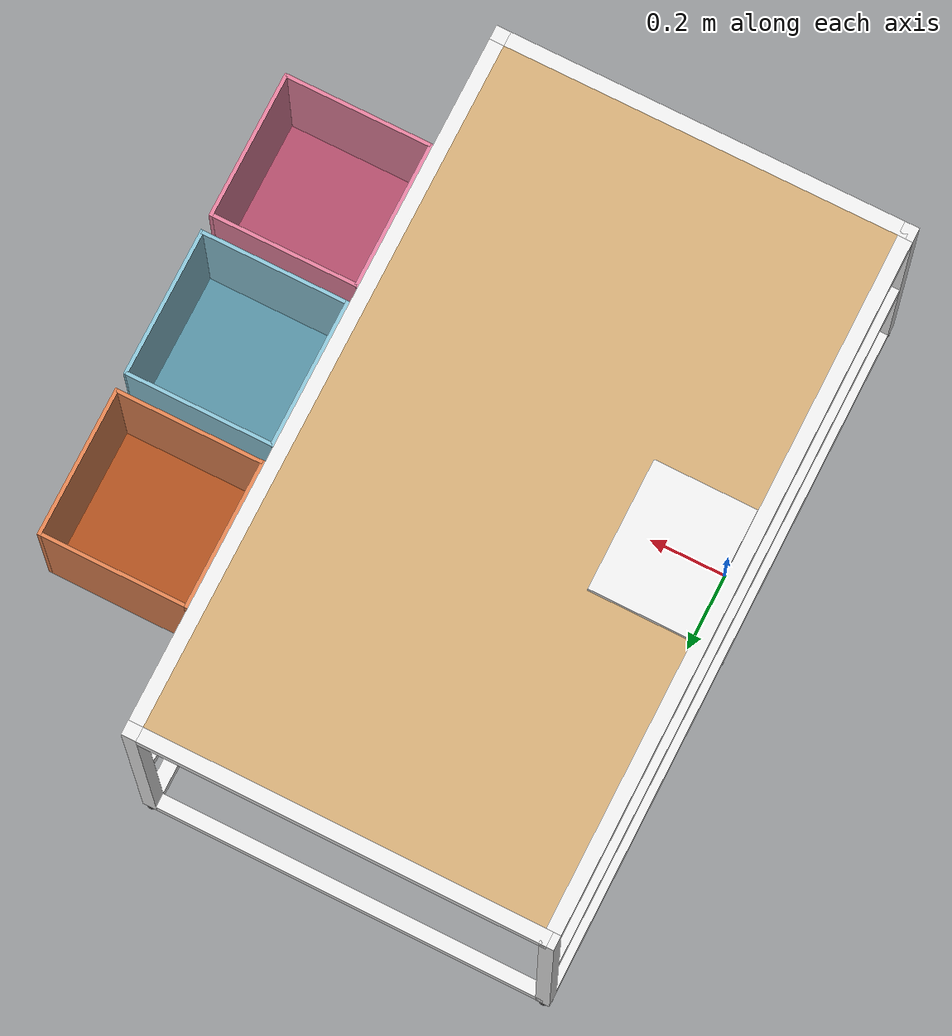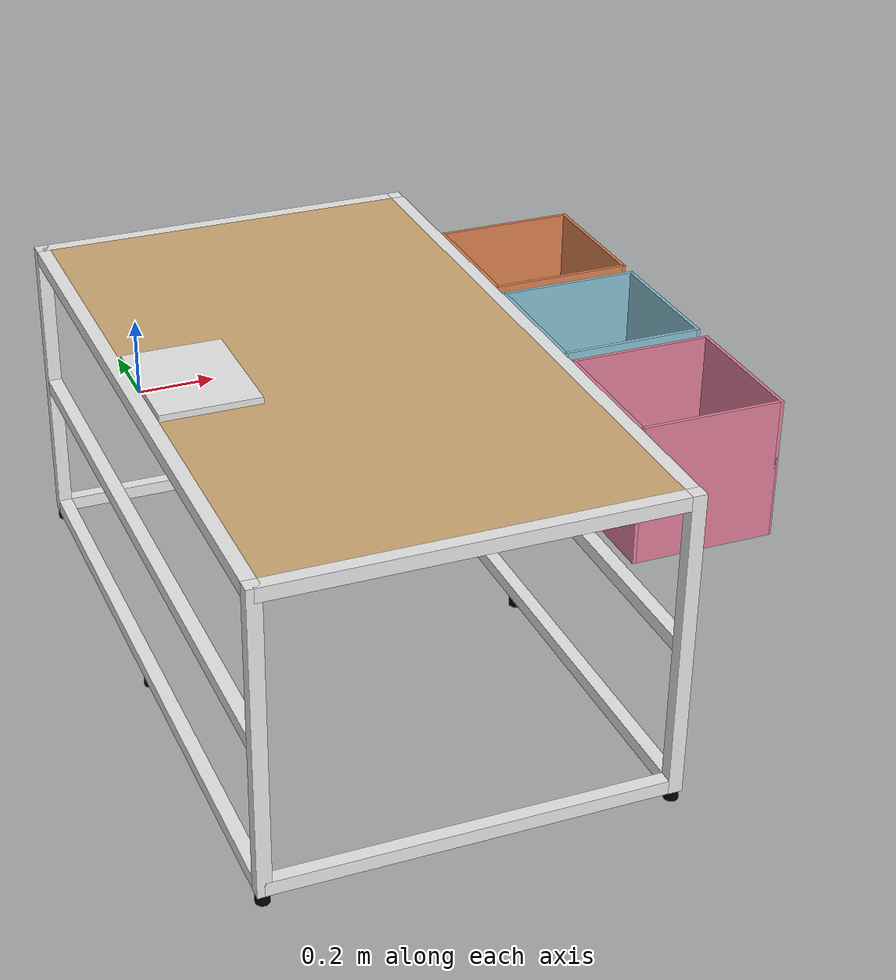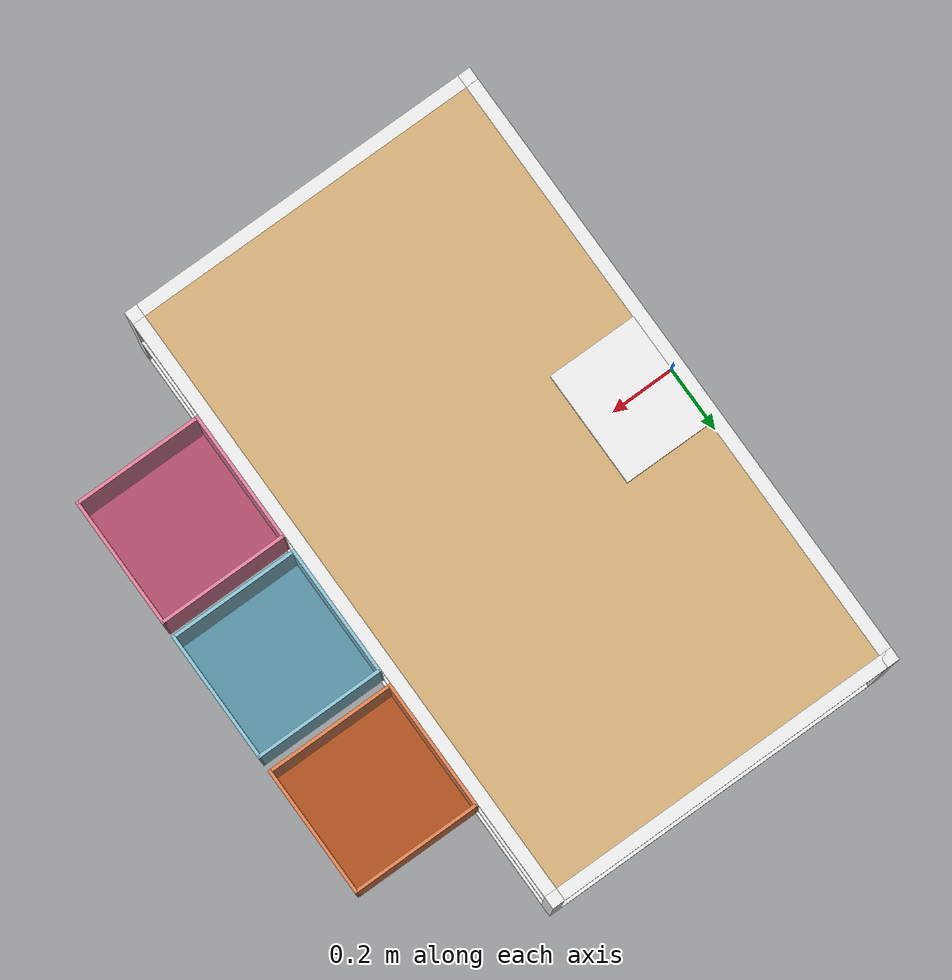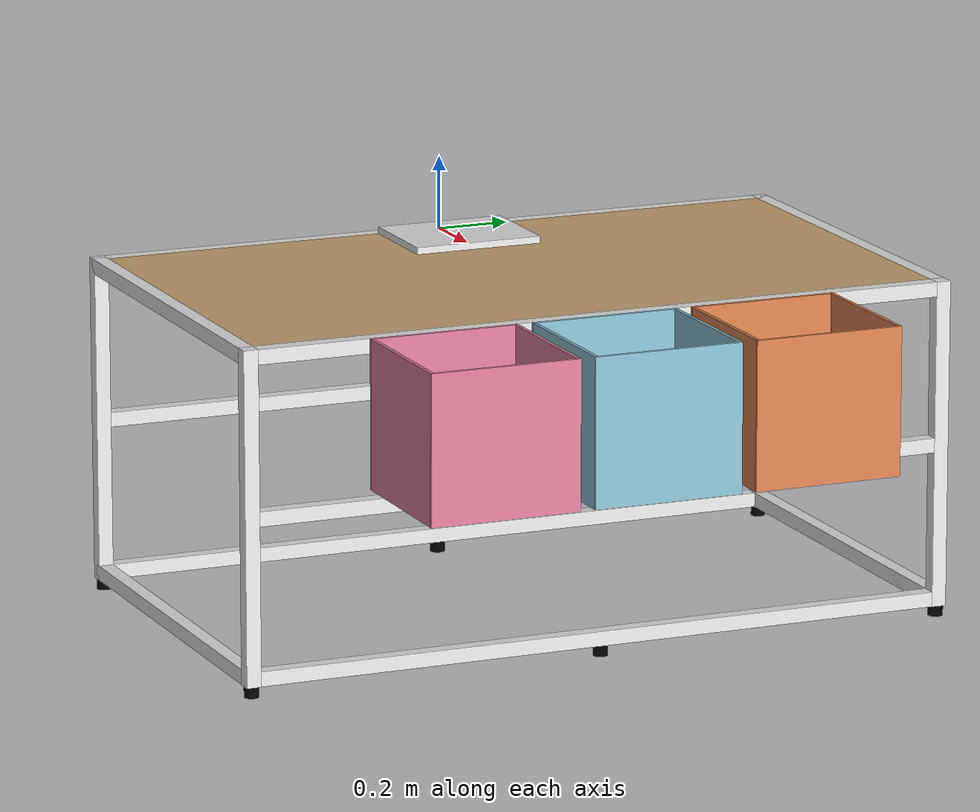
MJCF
<mujoco model="PandaFrame">
    <worldbody>
        <body name="table_plane" pos="0 0 0">
            <geom type="box" pos="0.54 0 0" size="0.54 0.96 0.001" rgba="0.8 0.655 0.45 1" solimp="0.999 0.999 0.001" solref="0.002 1"/>

            <body name="panda_ground" pos="0.14 0 0.01">
            <geom type="box" size="0.14 0.18 0.01" rgba=".9 .9 .9 1"/>
            </body>

            <body name="front_upper" pos="0.55 0 -0.019">
            <geom type="box" pos="0.55 0 0" size="0.02 0.96 0.02" rgba=".9 .9 .9 1"/>
            </body>
            <body name="front_mid" pos="0.55 0 -0.445">
            <geom type="box" pos="0.55 0 0" size="0.02 0.96 0.02" rgba=".9 .9 .9 1"/>
            </body>
            <body name="front_lower" pos="0.55 0 -0.87">
            <geom type="box" pos="0.55 0 0" size="0.02 0.96 0.02" rgba=".9 .9 .9 1"/>
            </body>

            <body name="back_upper" pos="-0.02 0 -0.019">
            <geom type="box" size="0.02 0.96 0.02" rgba=".9 .9 .9 1"/>
            </body>
            <body name="back_mid" pos="-0.02 0 -0.445">
            <geom type="box" size="0.02 0.96 0.02" rgba=".9 .9 .9 1"/>
            </body>
            <body name="back_lower" pos="-0.02 0 -0.87">
            <geom type="box" size="0.02 0.96 0.02" rgba=".9 .9 .9 1"/>
            </body>

            <body name="vert_front_left" pos="0.55 0.98 -0.445">
            <geom type="box" pos="0.55 0 0" size="0.02 0.02 0.446" rgba=".9 .9 .9 1"/>
            </body>
            <body name="vert_front_right" pos="0.55 -0.98 -0.445">
            <geom type="box" pos="0.55 0 0" size="0.02 0.02 0.446" rgba=".9 .9 .9 1"/>
            </body>
            <body name="vert_back_left" pos="-0.02 0.98 -0.445">
            <geom type="box" size="0.02 0.02 0.446" rgba=".9 .9 .9 1"/>
            </body>
            <body name="vert_back_right" pos="-0.02 -0.98 -0.445">
            <geom type="box" size="0.02 0.02 0.446" rgba=".9 .9 .9 1"/>
            </body>

            <body name="side_upper_right" pos="0 -0.98 -0.019">
            <geom type="box" pos="0.53 0 0" size="0.55 0.02 0.02" rgba=".9 .9 .9 1"/>
            </body>
            <body name="side_lower_right" pos="0 -0.98 -0.87">
            <geom type="box" pos="0.53 0 0" size="0.55 0.02 0.02" rgba=".9 .9 .9 1"/>
            </body>

            <body name="side_upper_left" pos="0 0.98 -0.019">
            <geom type="box" pos="0.53 0 0" size="0.55 0.02 0.02" rgba=".9 .9 .9 1"/>
            </body>
            <body name="side_lower_left" pos="0 0.98 -0.87">
            <geom type="box" pos="0.53 0 0" size="0.55 0.02 0.02" rgba=".9 .9 .9 1"/>
            </body>

            <body name="foot_front_left" pos="0.55 0.98 -0.9">
            <geom type="cylinder" pos="0.55 0 0" size="0.02 0.02 0.04" rgba="0 0 0 1"/>
            </body>
            <body name="foot_front_mid" pos="0.55 0 -0.9">
            <geom type="cylinder" pos="0.55 0 0" size="0.02 0.02 0.04" rgba="0 0 0 1"/>
            </body>
            <body name="foot_front_right" pos="0.55 -0.98 -0.9">
            <geom type="cylinder" pos="0.55 0 0" size="0.02 0.02 0.04" rgba="0 0 0 1"/>
            </body>

            <body name="foot_back_left" pos="-0.02 0.98 -0.9">
            <geom type="cylinder" size="0.02 0.02 0.04" rgba="0 0 0 1"/>
            </body>
            <body name="foot_back_mid" pos="-0.02 0 -0.9">
            <geom type="cylinder" size="0.02 0.02 0.04" rgba="0 0 0 1"/>
            </body>
            <body name="foot_back_right" pos="-0.02 -0.98 -0.9">
            <geom type="cylinder" size="0.02 0.02 0.04" rgba="0 0 0 1"/>
            </body>

            <body name="bin_0" pos="1.325 0 -0.399">
              <geom pos="0 0 0.005" size="0.2 0.2 0.005" rgba="0.33 0.55 0.62 1" type="box"/>
              <geom pos="0.2 0 0.2" size="0.005 0.205 0.2" rgba="0.53 0.75 0.82 1" type="box"/>
              <geom pos="0 0.2 0.2" size="0.2 0.005 0.2" rgba="0.53 0.75 0.82 1" type="box"/>
              <geom pos="-0.2 0 0.2" size="0.005 0.205 0.2" rgba="0.53 0.75 0.82 1" type="box"/>
              <geom pos="0 -0.2 0.2" size="0.2 0.005 0.2" rgba="0.53 0.75 0.82 1" type="box"/>
            </body>

            <body name="bin_1" pos=" 1.325 0.45 -0.399">
              <geom pos="0 0 0.005" size="0.2 0.2 0.005" rgba="0.66 0.3 0.11 1" type="box"/>
              <geom pos="0.2 0 0.2" size="0.005 0.205 0.2" rgba="0.86 0.5 0.31 1" type="box"/>
              <geom pos="0 0.2 0.2" size="0.2 0.005 0.2" rgba="0.86 0.5 0.31 1" type="box"/>
              <geom pos="-0.2 0 0.2" size="0.005 0.205 0.2" rgba="0.86 0.5 0.31 1" type="box"/>
              <geom pos="0 -0.2 0.2" size="0.2 0.005 0.2" rgba="0.86 0.5 0.31 1" type="box"/>
            </body>

            <body name="bin_2" pos="1.325 -0.45 -0.399">
              <geom pos="0 0 0.005" size="0.2 0.2 0.005" rgba="0.67 0.29 0.4 1" type="box"/>
              <geom pos="0.2 0 0.2" size="0.005 0.205 0.2" rgba="0.87 0.49 0.6 1" type="box"/>
              <geom pos="0 0.2 0.2" size="0.2 0.005 0.2" rgba="0.87 0.49 0.6 1" type="box"/>
              <geom pos="-0.2 0 0.2" size="0.005 0.205 0.2" rgba="0.87 0.49 0.62 1" type="box"/>
              <geom pos="0 -0.2 0.2" size="0.2 0.005 0.2" rgba="0.87 0.49 0.6 1" type="box"/>
            </body>

            <body name="support_body" pos="0.54 0 -0.02" >
            <geom type="box" size="0.58 1 0.021" rgba="0 0 0 0" solimp="0.999  0.999 0.001" solref="0.002 1"/>
            </body>
        </body>
      <body name="ref" pos="0.6 0.0 -0.2">
       <site name="ref" rgba='1 1 1 1' size='0.020'/>
      </body>
    </worldbody>
</mujoco>
